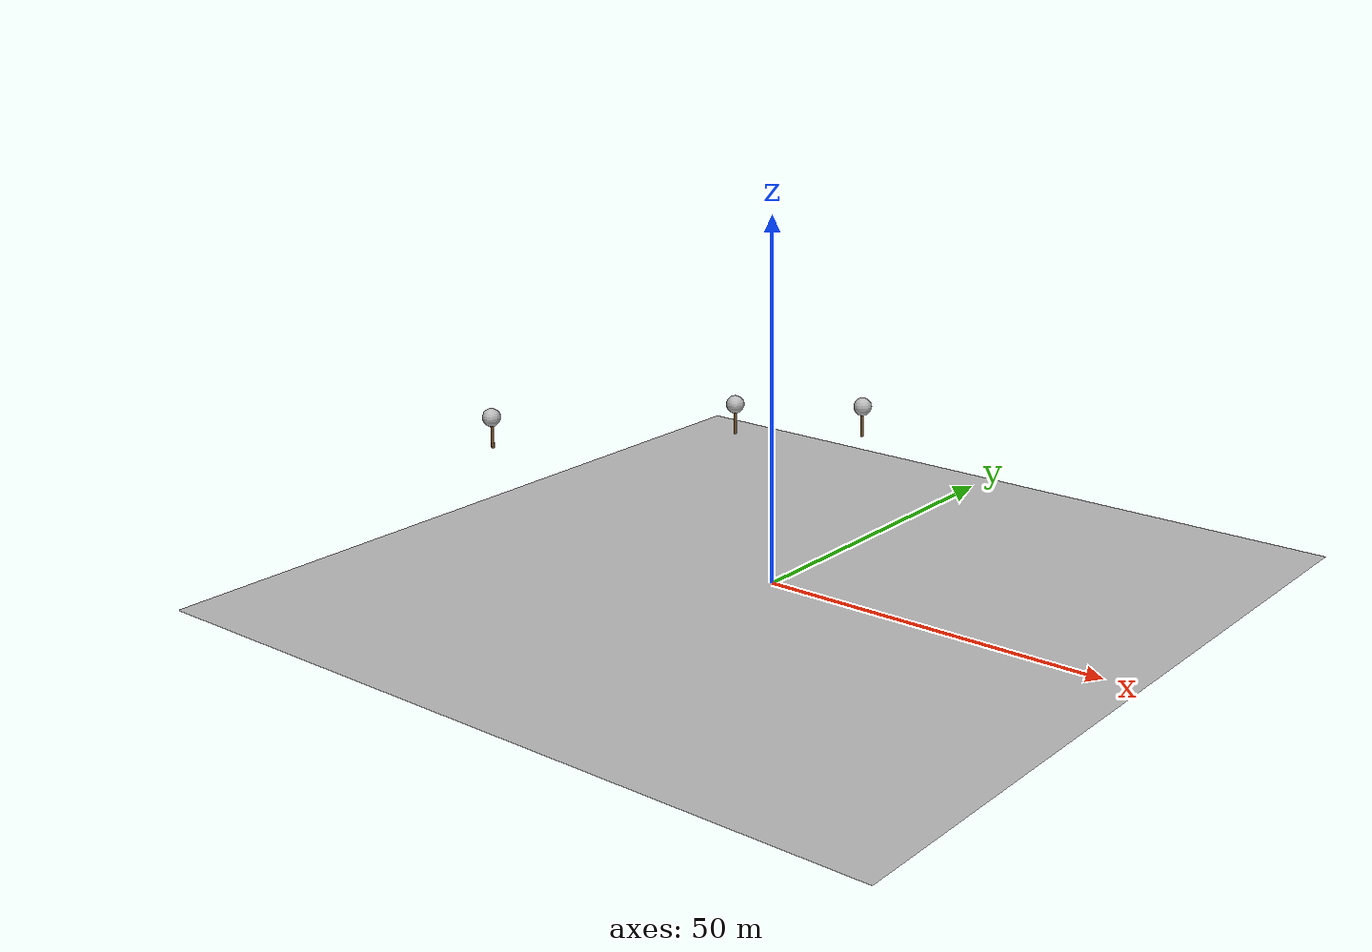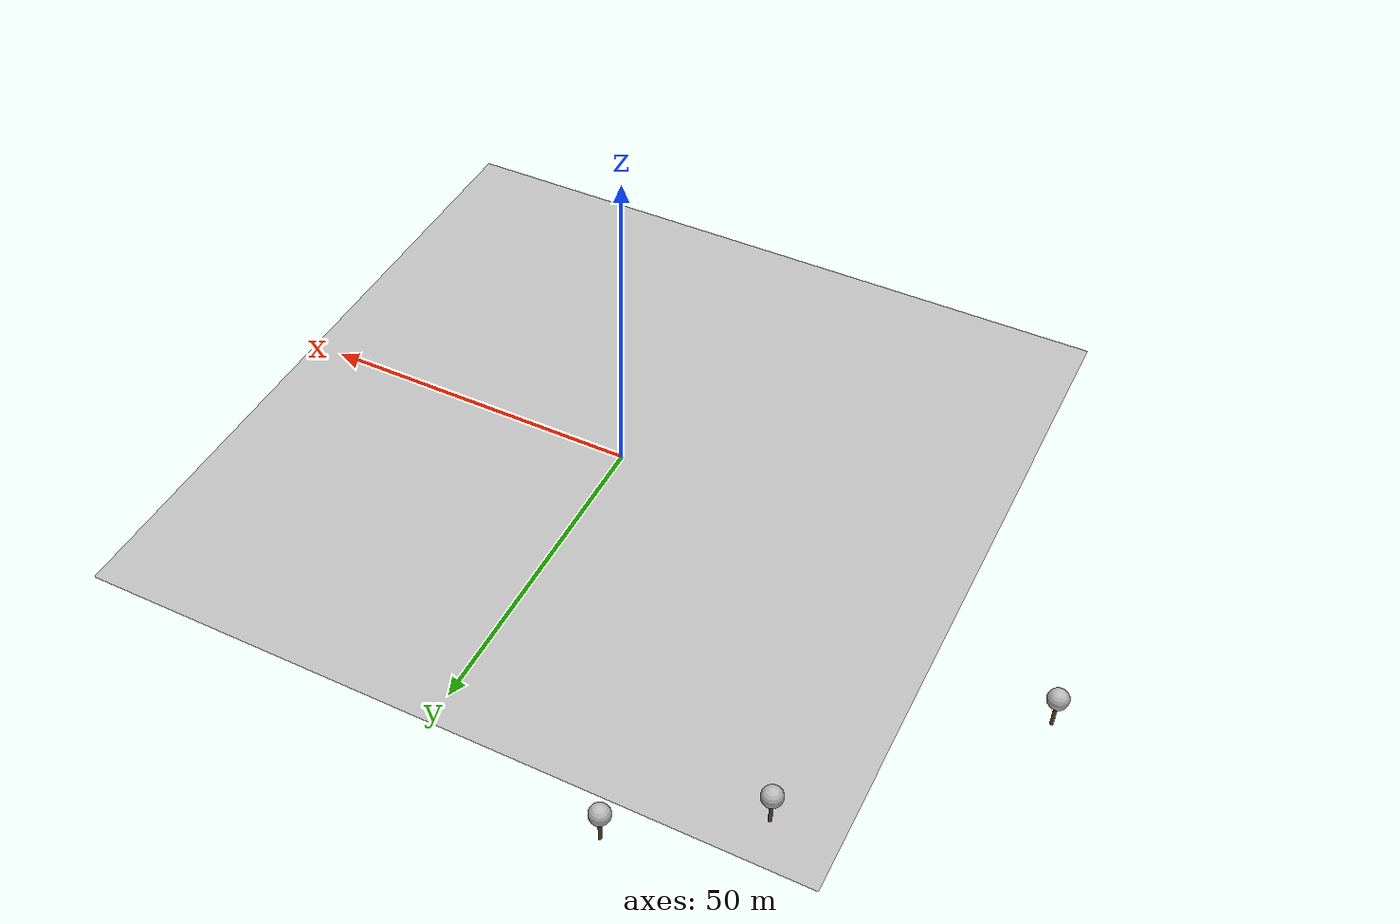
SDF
<sdf version="1.7">
 <world name="default">
  <model name="ground_plane">
   <static>1</static>
   <link name="link">
    <collision name="collision">
     <geometry><plane><normal>0 0 1</normal><size>250 250</size></plane></geometry>
     <surface><friction><ode><mu>1</mu><mu2>1</mu2></ode></friction></surface>
    </collision>
    <visual name="grass">
     <cast_shadows>0</cast_shadows>
     <geometry><mesh><uri>model://SARcgrass/grass_plane.dae</uri><scale>1 1 1</scale></mesh></geometry>
    </visual>
   </link>
  </model>
  <model name="MRS_tree_simples_fire2">
   <pose>-30 50 0 0 -0 0</pose>
   <frame name="MRS_tree_simples_fire::__model__" attached_to="MRS_tree_simples_fire::link">
    <pose relative_to="__model__">-15.7074 -1.53403 0 0 -0 0</pose>
   </frame>
   <static>1</static>
   <link name="MRS_tree_simples_fire::link">
    <pose relative_to="MRS_tree_simples_fire::__model__">0 0 0.1 0 -0 0</pose>
    <inertial>
     <mass>666</mass>
     <inertia>
      <ixx>0.0861167</ixx>
      <ixy>0</ixy>
      <ixz>0</ixz>
      <iyy>0.0861167</iyy>
      <iyz>0</iyz>
      <izz>0.0861167</izz>
     </inertia>
    </inertial>
    <collision name="collision_trunk">
     <pose>0 0 2 0 -0 0</pose>
     <geometry><cylinder><radius>0.25</radius><length>4</length></cylinder></geometry>
     <surface>
      <contact>
       <poissons_ratio>0.347</poissons_ratio>
       <elastic_modulus>8.8e+09</elastic_modulus>
       <ode><kp>100000</kp><kd>100</kd><max_vel>100</max_vel><min_depth>0.001</min_depth></ode>
      </contact>
      <friction>
       <torsional>
        <coefficient>1</coefficient>
        <use_patch_radius>0</use_patch_radius>
        <surface_radius>0.01</surface_radius>
       </torsional>
      </friction>
     </surface>
    </collision>
    <collision name="collision_treetop">
     <pose>0 0 5.2 0 -0 0</pose>
     <geometry><sphere><radius>1.5</radius></sphere></geometry>
     <surface>
      <contact>
       <poissons_ratio>0.347</poissons_ratio>
       <elastic_modulus>8.8e+09</elastic_modulus>
       <ode><kp>100000</kp><kd>100</kd><max_vel>100</max_vel><min_depth>0.001</min_depth></ode>
      </contact>
      <friction>
       <torsional>
        <coefficient>1</coefficient>
        <use_patch_radius>0</use_patch_radius>
        <surface_radius>0.01</surface_radius>
       </torsional>
      </friction>
     </surface>
    </collision>
    <visual name="trunk">
     <pose>0 0 2 0 -0 0</pose>
     <geometry><cylinder><radius>0.25</radius><length>4</length></cylinder></geometry>
     <material>
      <script>
       <uri>model://MRS_tree_simples_fire/scripts</uri>
       <uri>model://MRS_tree_simples_fire/materials/textures</uri>
       <name>MRS_tree_simples_fire/Trunk</name>
      </script>
     </material>
    </visual>
    <visual name="treetop">
     <pose>0 0 5.2 0 -0 0</pose>
     <geometry><sphere><radius>1.5</radius></sphere></geometry>
     <material>
      <script>
       <uri>model://MRS_tree_simples_fire/scripts</uri>
       <uri>model://MRS_tree_simples_fire/materials/textures</uri>
       <name>MRS_tree_simples_fire/Treetop</name>
      </script>
     </material>
    </visual>
   </link>
  </model>
  <model name="MRS_tree_simples_close2">
   <pose>-15 70 0 0 -0 0</pose>
   <frame name="MRS_tree_simples_close::__model__" attached_to="MRS_tree_simples_close::link">
    <pose relative_to="__model__">-13.0841 -9.57027 0 0 -0 0</pose>
   </frame>
   <static>1</static>
   <link name="MRS_tree_simples_close::link">
    <pose relative_to="MRS_tree_simples_close::__model__">0 0 0.1 0 -0 0</pose>
    <inertial>
     <mass>666</mass>
     <inertia>
      <ixx>0.0861167</ixx>
      <ixy>0</ixy>
      <ixz>0</ixz>
      <iyy>0.0861167</iyy>
      <iyz>0</iyz>
      <izz>0.0861167</izz>
     </inertia>
    </inertial>
    <collision name="collision_trunk">
     <pose>0 0 2 0 -0 0</pose>
     <geometry><cylinder><radius>0.25</radius><length>4</length></cylinder></geometry>
     <surface>
      <contact>
       <poissons_ratio>0.347</poissons_ratio>
       <elastic_modulus>8.8e+09</elastic_modulus>
       <ode><kp>100000</kp><kd>100</kd><max_vel>100</max_vel><min_depth>0.001</min_depth></ode>
      </contact>
      <friction>
       <torsional>
        <coefficient>1</coefficient>
        <use_patch_radius>0</use_patch_radius>
        <surface_radius>0.01</surface_radius>
       </torsional>
      </friction>
     </surface>
    </collision>
    <collision name="collision_treetop">
     <pose>0 0 5.2 0 -0 0</pose>
     <geometry><sphere><radius>1.5</radius></sphere></geometry>
     <surface>
      <contact>
       <poissons_ratio>0.347</poissons_ratio>
       <elastic_modulus>8.8e+09</elastic_modulus>
       <ode><kp>100000</kp><kd>100</kd><max_vel>100</max_vel><min_depth>0.001</min_depth></ode>
      </contact>
      <friction>
       <torsional>
        <coefficient>1</coefficient>
        <use_patch_radius>0</use_patch_radius>
        <surface_radius>0.01</surface_radius>
       </torsional>
      </friction>
     </surface>
    </collision>
    <visual name="trunk">
     <pose>0 0 2 0 -0 0</pose>
     <geometry><cylinder><radius>0.25</radius><length>4</length></cylinder></geometry>
     <material>
      <script>
       <uri>model://MRS_tree_simples_close/scripts</uri>
       <uri>model://MRS_tree_simples_close/materials/textures</uri>
       <name>MRS_tree_simples_close/Trunk</name>
      </script>
     </material>
    </visual>
    <visual name="treetop">
     <pose>0 0 5.2 0 -0 0</pose>
     <geometry><sphere><radius>1.5</radius></sphere></geometry>
     <material>
      <script>
       <uri>model://MRS_tree_simples_close/scripts</uri>
       <uri>model://MRS_tree_simples_close/materials/textures</uri>
       <name>MRS_tree_simples_close/Treetop</name>
      </script>
     </material>
    </visual>
   </link>
  </model>
  <model name="MRS_tree_simple2">
   <pose>-45 30 0 0 -0 0</pose>
   <frame name="MRS_tree_simple::__model__" attached_to="MRS_tree_simple::link">
    <pose relative_to="__model__">-27.3408 -11.9444 0 0 -0 0</pose>
   </frame>
   <static>1</static>
   <link name="MRS_tree_simple::link">
    <pose relative_to="MRS_tree_simple::__model__">0 0 0.1 0 -0 0</pose>
    <inertial>
     <mass>666</mass>
     <inertia>
      <ixx>0.0861167</ixx>
      <ixy>0</ixy>
      <ixz>0</ixz>
      <iyy>0.0861167</iyy>
      <iyz>0</iyz>
      <izz>0.0861167</izz>
     </inertia>
    </inertial>
    <collision name="collision_trunk">
     <pose>0 0 2 0 -0 0</pose>
     <geometry><cylinder><radius>0.25</radius><length>4</length></cylinder></geometry>
     <surface>
      <contact>
       <poissons_ratio>0.347</poissons_ratio>
       <elastic_modulus>8.8e+09</elastic_modulus>
       <ode><kp>100000</kp><kd>100</kd><max_vel>100</max_vel><min_depth>0.001</min_depth></ode>
      </contact>
      <friction>
       <torsional>
        <coefficient>1</coefficient>
        <use_patch_radius>0</use_patch_radius>
        <surface_radius>0.01</surface_radius>
       </torsional>
      </friction>
     </surface>
    </collision>
    <collision name="collision_treetop">
     <pose>0 0 5.2 0 -0 0</pose>
     <geometry><sphere><radius>1.5</radius></sphere></geometry>
     <surface>
      <contact>
       <poissons_ratio>0.347</poissons_ratio>
       <elastic_modulus>8.8e+09</elastic_modulus>
       <ode><kp>100000</kp><kd>100</kd><max_vel>100</max_vel><min_depth>0.001</min_depth></ode>
      </contact>
      <friction>
       <torsional>
        <coefficient>1</coefficient>
        <use_patch_radius>0</use_patch_radius>
        <surface_radius>0.01</surface_radius>
       </torsional>
      </friction>
     </surface>
    </collision>
    <visual name="trunk">
     <pose>0 0 2 0 -0 0</pose>
     <geometry><cylinder><radius>0.25</radius><length>4</length></cylinder></geometry>
     <material>
      <script>
       <uri>model://MRS_tree_simple/scripts</uri>
       <uri>model://MRS_tree_simple/materials/textures</uri>
       <name>MRS_tree_simple/Trunk</name>
      </script>
     </material>
    </visual>
    <visual name="treetop">
     <pose>0 0 5.2 0 -0 0</pose>
     <geometry><sphere><radius>1.5</radius></sphere></geometry>
     <material>
      <script>
       <uri>model://MRS_tree_simple/scripts</uri>
       <uri>model://MRS_tree_simple/materials/textures</uri>
       <name>MRS_tree_simple/Treetop</name>
      </script>
     </material>
    </visual>
   </link>
  </model>
 </world>
</sdf>
